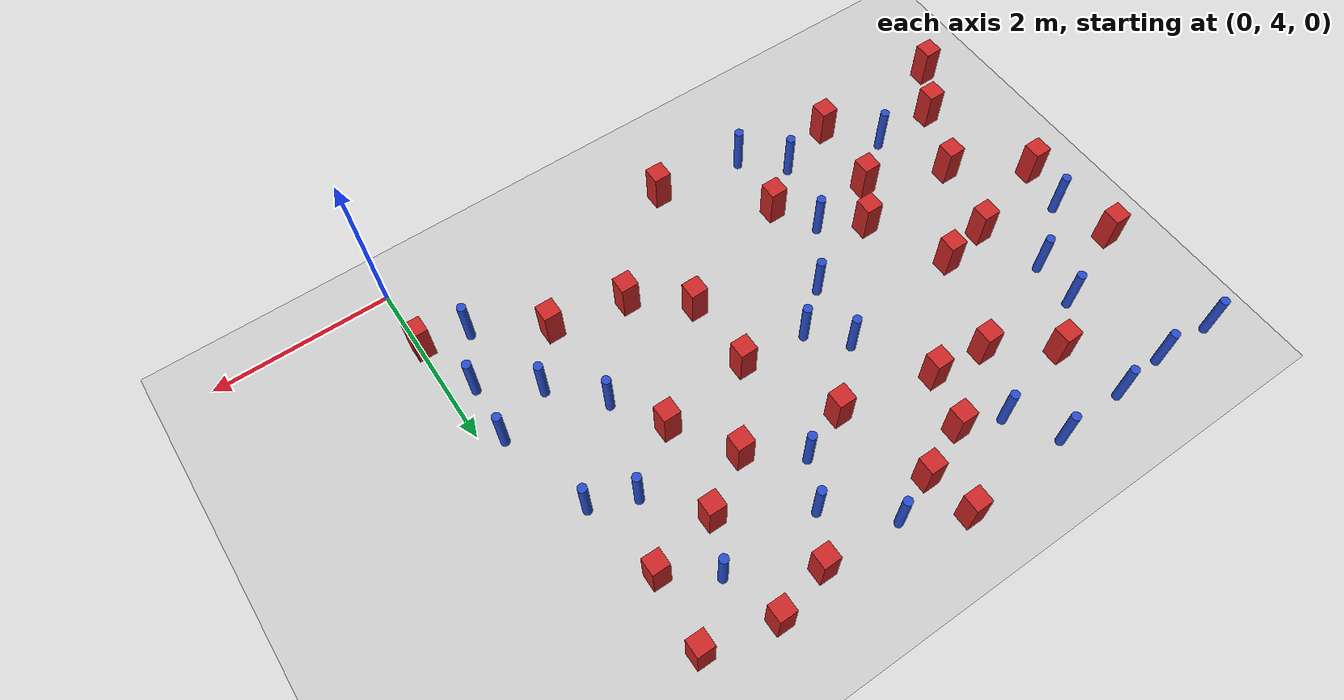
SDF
<sdf version="1.6">
 <world name="default">
  <model name="ground_plane">
   <static>1</static>
   <link name="link">
    <collision name="collision">
     <geometry><plane><normal>0 0 1</normal><size>100 100</size></plane></geometry>
     <surface><friction><ode><mu>100</mu><mu2>50</mu2></ode></friction></surface>
    </collision>
    <visual name="visual">
     <cast_shadows>0</cast_shadows>
     <geometry><plane><normal>0 0 1</normal><size>100 100</size></plane></geometry>
     <material>
      <ambient>1.0 1.0 1.0 1.0</ambient>
      <diffuse>0.8 0.8 0.8 1.0</diffuse>
      <specular>0.01 0.01 0.01 1.000000</specular>
     </material>
    </visual>
   </link>
  </model>
  <model name="square_post_obstacle0">
   <static>true</static>
   <pose>-3.53075418306 9.46736991092 1.91545236811e-07 -7.35059704564e-06 1.12565212e-07 2.39332434364e-05</pose>
   <link name="link">
    <pose>0 0 0.25 0 -0 0</pose>
    <inertial>
     <mass>100</mass>
     <inertia>
      <ixx>0.166667</ixx>
      <ixy>0</ixy>
      <ixz>0</ixz>
      <iyy>0.166667</iyy>
      <iyz>0</iyz>
      <izz>0.166667</izz>
     </inertia>
    </inertial>
    <collision name="collision"><geometry><box><size>.2 .2 .5</size></box></geometry></collision>
    <visual name="visual">
     <geometry><box><size>.2 .2 .5</size></box></geometry>
     <material>
      <script><name>Gazebo/Red</name><uri>file://media/materials/scripts/gazebo.material</uri></script>
     </material>
    </visual>
   </link>
  </model>
  <model name="square_post_obstacle1">
   <static>true</static>
   <pose>-5.25605438137 4.89700262529 1.91545236811e-07 -7.35059704564e-06 1.12565212e-07 2.39332434364e-05</pose>
   <link name="link">
    <pose>0 0 0.25 0 -0 0</pose>
    <inertial>
     <mass>100</mass>
     <inertia>
      <ixx>0.166667</ixx>
      <ixy>0</ixy>
      <ixz>0</ixz>
      <iyy>0.166667</iyy>
      <iyz>0</iyz>
      <izz>0.166667</izz>
     </inertia>
    </inertial>
    <collision name="collision"><geometry><box><size>.2 .2 .5</size></box></geometry></collision>
    <visual name="visual">
     <geometry><box><size>.2 .2 .5</size></box></geometry>
     <material>
      <script><name>Gazebo/Red</name><uri>file://media/materials/scripts/gazebo.material</uri></script>
     </material>
    </visual>
   </link>
  </model>
  <model name="pole_obstacle3">
   <static>true</static>
   <pose>-1.21258136794 8.60759333295 7.38925637345e-09 -8.47170692798e-08 1.24976764881e-08 -1.74513093027e-07</pose>
   <link name="link">
    <pose>0 0 0.3 0 -0 0</pose>
    <inertial>
     <mass>1</mass>
     <inertia><ixx>0.145833</ixx><ixy>0</ixy><ixz>0</ixz><iyy>0.145833</iyy><iyz>0</iyz><izz>0.125</izz></inertia>
    </inertial>
    <collision name="collision">
     <geometry><cylinder><radius>0.05</radius><length>.6</length></cylinder></geometry>
    </collision>
    <visual name="visual">
     <geometry><cylinder><radius>0.05</radius><length>.6</length></cylinder></geometry>
     <material>
      <script><name>Gazebo/Blue</name><uri>file://media/materials/scripts/gazebo.material</uri></script>
     </material>
    </visual>
   </link>
  </model>
  <model name="pole_obstacle5">
   <static>true</static>
   <pose>-0.992801236177 7.50081790914 7.38925637345e-09 -8.47170692799e-08 1.2497676509e-08 -1.74513093015e-07</pose>
   <link name="link">
    <pose>0 0 0.3 0 -0 0</pose>
    <inertial>
     <mass>1</mass>
     <inertia><ixx>0.145833</ixx><ixy>0</ixy><ixz>0</ixz><iyy>0.145833</iyy><iyz>0</iyz><izz>0.125</izz></inertia>
    </inertial>
    <collision name="collision">
     <geometry><cylinder><radius>0.05</radius><length>.6</length></cylinder></geometry>
    </collision>
    <visual name="visual">
     <geometry><cylinder><radius>0.05</radius><length>.6</length></cylinder></geometry>
     <material>
      <script><name>Gazebo/Blue</name><uri>file://media/materials/scripts/gazebo.material</uri></script>
     </material>
    </visual>
   </link>
  </model>
  <model name="square_post_obstacle17">
   <static>true</static>
   <pose>-6.07549606696 6.16473758936 1.91545236811e-07 -7.35059704564e-06 1.12565212e-07 2.39332434364e-05</pose>
   <link name="link">
    <pose>0 0 0.25 0 -0 0</pose>
    <inertial>
     <mass>100</mass>
     <inertia>
      <ixx>0.166667</ixx>
      <ixy>0</ixy>
      <ixz>0</ixz>
      <iyy>0.166667</iyy>
      <iyz>0</iyz>
      <izz>0.166667</izz>
     </inertia>
    </inertial>
    <collision name="collision"><geometry><box><size>.2 .2 .5</size></box></geometry></collision>
    <visual name="visual">
     <geometry><box><size>.2 .2 .5</size></box></geometry>
     <material>
      <script><name>Gazebo/Red</name><uri>file://media/materials/scripts/gazebo.material</uri></script>
     </material>
    </visual>
   </link>
  </model>
  <model name="pole_obstacle12">
   <static>true</static>
   <pose>-6.2879917336 9.29565912501 7.38925637345e-09 -8.471706928e-08 1.24976765081e-08 -1.74513093015e-07</pose>
   <link name="link">
    <pose>0 0 0.3 0 -0 0</pose>
    <inertial>
     <mass>1</mass>
     <inertia><ixx>0.145833</ixx><ixy>0</ixy><ixz>0</ixz><iyy>0.145833</iyy><iyz>0</iyz><izz>0.125</izz></inertia>
    </inertial>
    <collision name="collision">
     <geometry><cylinder><radius>0.05</radius><length>.6</length></cylinder></geometry>
    </collision>
    <visual name="visual">
     <geometry><cylinder><radius>0.05</radius><length>.6</length></cylinder></geometry>
     <material>
      <script><name>Gazebo/Blue</name><uri>file://media/materials/scripts/gazebo.material</uri></script>
     </material>
    </visual>
   </link>
  </model>
  <model name="square_post_obstacle21">
   <static>true</static>
   <pose>-1.63938460143 7.04076987907 1.91545236811e-07 -7.35059704564e-06 1.12565212e-07 2.39332434364e-05</pose>
   <link name="link">
    <pose>0 0 0.25 0 -0 0</pose>
    <inertial>
     <mass>100</mass>
     <inertia>
      <ixx>0.166667</ixx>
      <ixy>0</ixy>
      <ixz>0</ixz>
      <iyy>0.166667</iyy>
      <iyz>0</iyz>
      <izz>0.166667</izz>
     </inertia>
    </inertial>
    <collision name="collision"><geometry><box><size>.2 .2 .5</size></box></geometry></collision>
    <visual name="visual">
     <geometry><box><size>.2 .2 .5</size></box></geometry>
     <material>
      <script><name>Gazebo/Red</name><uri>file://media/materials/scripts/gazebo.material</uri></script>
     </material>
    </visual>
   </link>
  </model>
  <model name="square_post_obstacle27">
   <static>true</static>
   <pose>-2.65837674304 6.03648667103 1.91545236811e-07 -7.35059704564e-06 1.12565212e-07 2.39332434364e-05</pose>
   <link name="link">
    <pose>0 0 0.25 0 -0 0</pose>
    <inertial>
     <mass>100</mass>
     <inertia>
      <ixx>0.166667</ixx>
      <ixy>0</ixy>
      <ixz>0</ixz>
      <iyy>0.166667</iyy>
      <iyz>0</iyz>
      <izz>0.166667</izz>
     </inertia>
    </inertial>
    <collision name="collision"><geometry><box><size>.2 .2 .5</size></box></geometry></collision>
    <visual name="visual">
     <geometry><box><size>.2 .2 .5</size></box></geometry>
     <material>
      <script><name>Gazebo/Red</name><uri>file://media/materials/scripts/gazebo.material</uri></script>
     </material>
    </visual>
   </link>
  </model>
  <model name="pole_obstacle19">
   <static>true</static>
   <pose>-5.70585581298 5.40961783522 7.38925637345e-09 -8.47170692796e-08 1.24976764786e-08 -1.74513093032e-07</pose>
   <link name="link">
    <pose>0 0 0.3 0 -0 0</pose>
    <inertial>
     <mass>1</mass>
     <inertia><ixx>0.145833</ixx><ixy>0</ixy><ixz>0</ixz><iyy>0.145833</iyy><iyz>0</iyz><izz>0.125</izz></inertia>
    </inertial>
    <collision name="collision">
     <geometry><cylinder><radius>0.05</radius><length>.6</length></cylinder></geometry>
    </collision>
    <visual name="visual">
     <geometry><cylinder><radius>0.05</radius><length>.6</length></cylinder></geometry>
     <material>
      <script><name>Gazebo/Blue</name><uri>file://media/materials/scripts/gazebo.material</uri></script>
     </material>
    </visual>
   </link>
  </model>
  <model name="pole_obstacle20">
   <static>true</static>
   <pose>-6.00791759984 8.25506998777 7.38925637345e-09 -8.471706928e-08 1.24976765081e-08 -1.74513093015e-07</pose>
   <link name="link">
    <pose>0 0 0.3 0 -0 0</pose>
    <inertial>
     <mass>1</mass>
     <inertia><ixx>0.145833</ixx><ixy>0</ixy><ixz>0</ixz><iyy>0.145833</iyy><iyz>0</iyz><izz>0.125</izz></inertia>
    </inertial>
    <collision name="collision">
     <geometry><cylinder><radius>0.05</radius><length>.6</length></cylinder></geometry>
    </collision>
    <visual name="visual">
     <geometry><cylinder><radius>0.05</radius><length>.6</length></cylinder></geometry>
     <material>
      <script><name>Gazebo/Blue</name><uri>file://media/materials/scripts/gazebo.material</uri></script>
     </material>
    </visual>
   </link>
  </model>
  <model name="pole_obstacle22">
   <static>true</static>
   <pose>-6.05785779084 7.73855304056 7.38925637345e-09 -8.47170692796e-08 1.24976764786e-08 -1.74513093032e-07</pose>
   <link name="link">
    <pose>0 0 0.3 0 -0 0</pose>
    <inertial>
     <mass>1</mass>
     <inertia><ixx>0.145833</ixx><ixy>0</ixy><ixz>0</ixz><iyy>0.145833</iyy><iyz>0</iyz><izz>0.125</izz></inertia>
    </inertial>
    <collision name="collision">
     <geometry><cylinder><radius>0.05</radius><length>.6</length></cylinder></geometry>
    </collision>
    <visual name="visual">
     <geometry><cylinder><radius>0.05</radius><length>.6</length></cylinder></geometry>
     <material>
      <script><name>Gazebo/Blue</name><uri>file://media/materials/scripts/gazebo.material</uri></script>
     </material>
    </visual>
   </link>
  </model>
  <model name="pole_obstacle24">
   <static>true</static>
   <pose>-4.49941915525 8.88102658289 7.38925637345e-09 -8.471706928e-08 1.24976765081e-08 -1.74513093015e-07</pose>
   <link name="link">
    <pose>0 0 0.3 0 -0 0</pose>
    <inertial>
     <mass>1</mass>
     <inertia><ixx>0.145833</ixx><ixy>0</ixy><ixz>0</ixz><iyy>0.145833</iyy><iyz>0</iyz><izz>0.125</izz></inertia>
    </inertial>
    <collision name="collision">
     <geometry><cylinder><radius>0.05</radius><length>.6</length></cylinder></geometry>
    </collision>
    <visual name="visual">
     <geometry><cylinder><radius>0.05</radius><length>.6</length></cylinder></geometry>
     <material>
      <script><name>Gazebo/Blue</name><uri>file://media/materials/scripts/gazebo.material</uri></script>
     </material>
    </visual>
   </link>
  </model>
  <model name="pole_obstacle25">
   <static>true</static>
   <pose>-2.93350430251 9.1320307527 7.38925637345e-09 -8.47170692793e-08 1.24976764408e-08 -1.74513093041e-07</pose>
   <link name="link">
    <pose>0 0 0.3 0 -0 0</pose>
    <inertial>
     <mass>1</mass>
     <inertia><ixx>0.145833</ixx><ixy>0</ixy><ixz>0</ixz><iyy>0.145833</iyy><iyz>0</iyz><izz>0.125</izz></inertia>
    </inertial>
    <collision name="collision">
     <geometry><cylinder><radius>0.05</radius><length>.6</length></cylinder></geometry>
    </collision>
    <visual name="visual">
     <geometry><cylinder><radius>0.05</radius><length>.6</length></cylinder></geometry>
     <material>
      <script><name>Gazebo/Blue</name><uri>file://media/materials/scripts/gazebo.material</uri></script>
     </material>
    </visual>
   </link>
  </model>
  <model name="pole_obstacle27">
   <static>true</static>
   <pose>-0.524027592434 4.93453125982 7.38925637345e-09 -8.471706928e-08 1.24976765117e-08 -1.74513093013e-07</pose>
   <link name="link">
    <pose>0 0 0.3 0 -0 0</pose>
    <inertial>
     <mass>1</mass>
     <inertia><ixx>0.145833</ixx><ixy>0</ixy><ixz>0</ixz><iyy>0.145833</iyy><iyz>0</iyz><izz>0.125</izz></inertia>
    </inertial>
    <collision name="collision">
     <geometry><cylinder><radius>0.05</radius><length>.6</length></cylinder></geometry>
    </collision>
    <visual name="visual">
     <geometry><cylinder><radius>0.05</radius><length>.6</length></cylinder></geometry>
     <material>
      <script><name>Gazebo/Blue</name><uri>file://media/materials/scripts/gazebo.material</uri></script>
     </material>
    </visual>
   </link>
  </model>
  <model name="square_post_obstacle32">
   <static>true</static>
   <pose>-1.26162450526 5.40149464967 1.91545236811e-07 -7.35059704564e-06 1.12565212e-07 2.39332434364e-05</pose>
   <link name="link">
    <pose>0 0 0.25 0 -0 0</pose>
    <inertial>
     <mass>100</mass>
     <inertia>
      <ixx>0.166667</ixx>
      <ixy>0</ixy>
      <ixz>0</ixz>
      <iyy>0.166667</iyy>
      <iyz>0</iyz>
      <izz>0.166667</izz>
     </inertia>
    </inertial>
    <collision name="collision"><geometry><box><size>.2 .2 .5</size></box></geometry></collision>
    <visual name="visual">
     <geometry><box><size>.2 .2 .5</size></box></geometry>
     <material>
      <script><name>Gazebo/Red</name><uri>file://media/materials/scripts/gazebo.material</uri></script>
     </material>
    </visual>
   </link>
  </model>
  <model name="square_post_obstacle34">
   <static>true</static>
   <pose>-4.83403731483 6.23752323746 1.91545236811e-07 -7.35059704564e-06 1.12565212e-07 2.39332434364e-05</pose>
   <link name="link">
    <pose>0 0 0.25 0 -0 0</pose>
    <inertial>
     <mass>100</mass>
     <inertia>
      <ixx>0.166667</ixx>
      <ixy>0</ixy>
      <ixz>0</ixz>
      <iyy>0.166667</iyy>
      <iyz>0</iyz>
      <izz>0.166667</izz>
     </inertia>
    </inertial>
    <collision name="collision"><geometry><box><size>.2 .2 .5</size></box></geometry></collision>
    <visual name="visual">
     <geometry><box><size>.2 .2 .5</size></box></geometry>
     <material>
      <script><name>Gazebo/Red</name><uri>file://media/materials/scripts/gazebo.material</uri></script>
     </material>
    </visual>
   </link>
  </model>
  <model name="pole_obstacle36">
   <static>true</static>
   <pose>-3.8856009193 6.59154278633 7.38925637345e-09 -8.47170692798e-08 1.24976765033e-08 -1.74513093019e-07</pose>
   <link name="link">
    <pose>0 0 0.3 0 -0 0</pose>
    <inertial>
     <mass>1</mass>
     <inertia><ixx>0.145833</ixx><ixy>0</ixy><ixz>0</ixz><iyy>0.145833</iyy><iyz>0</iyz><izz>0.125</izz></inertia>
    </inertial>
    <collision name="collision">
     <geometry><cylinder><radius>0.05</radius><length>.6</length></cylinder></geometry>
    </collision>
    <visual name="visual">
     <geometry><cylinder><radius>0.05</radius><length>.6</length></cylinder></geometry>
     <material>
      <script><name>Gazebo/Blue</name><uri>file://media/materials/scripts/gazebo.material</uri></script>
     </material>
    </visual>
   </link>
  </model>
  <model name="pole_obstacle45">
   <static>true</static>
   <pose>-2.6048729082 8.10310193207 7.38925637345e-09 -8.47170692793e-08 1.24976764408e-08 -1.74513093041e-07</pose>
   <link name="link">
    <pose>0 0 0.3 0 -0 0</pose>
    <inertial>
     <mass>1</mass>
     <inertia><ixx>0.145833</ixx><ixy>0</ixy><ixz>0</ixz><iyy>0.145833</iyy><iyz>0</iyz><izz>0.125</izz></inertia>
    </inertial>
    <collision name="collision">
     <geometry><cylinder><radius>0.05</radius><length>.6</length></cylinder></geometry>
    </collision>
    <visual name="visual">
     <geometry><cylinder><radius>0.05</radius><length>.6</length></cylinder></geometry>
     <material>
      <script><name>Gazebo/Blue</name><uri>file://media/materials/scripts/gazebo.material</uri></script>
     </material>
    </visual>
   </link>
  </model>
  <model name="square_post_obstacle46">
   <static>true</static>
   <pose>-3.43145967635 8.93851247258 1.91545236811e-07 -7.35059704564e-06 1.12565212e-07 2.39332434364e-05</pose>
   <link name="link">
    <pose>0 0 0.25 0 -0 0</pose>
    <inertial>
     <mass>100</mass>
     <inertia>
      <ixx>0.166667</ixx>
      <ixy>0</ixy>
      <ixz>0</ixz>
      <iyy>0.166667</iyy>
      <iyz>0</iyz>
      <izz>0.166667</izz>
     </inertia>
    </inertial>
    <collision name="collision"><geometry><box><size>.2 .2 .5</size></box></geometry></collision>
    <visual name="visual">
     <geometry><box><size>.2 .2 .5</size></box></geometry>
     <material>
      <script><name>Gazebo/Red</name><uri>file://media/materials/scripts/gazebo.material</uri></script>
     </material>
    </visual>
   </link>
  </model>
  <model name="square_post_obstacle47">
   <static>true</static>
   <pose>-2.67235427778 6.89441027117 1.91545236811e-07 -7.35059704564e-06 1.12565212e-07 2.39332434364e-05</pose>
   <link name="link">
    <pose>0 0 0.25 0 -0 0</pose>
    <inertial>
     <mass>100</mass>
     <inertia>
      <ixx>0.166667</ixx>
      <ixy>0</ixy>
      <ixz>0</ixz>
      <iyy>0.166667</iyy>
      <iyz>0</iyz>
      <izz>0.166667</izz>
     </inertia>
    </inertial>
    <collision name="collision"><geometry><box><size>.2 .2 .5</size></box></geometry></collision>
    <visual name="visual">
     <geometry><box><size>.2 .2 .5</size></box></geometry>
     <material>
      <script><name>Gazebo/Red</name><uri>file://media/materials/scripts/gazebo.material</uri></script>
     </material>
    </visual>
   </link>
  </model>
  <model name="square_post_obstacle50">
   <static>true</static>
   <pose>-6.95456554702 7.86894618951 1.91545236811e-07 -7.35059704564e-06 1.12565212e-07 2.39332434364e-05</pose>
   <link name="link">
    <pose>0 0 0.25 0 -0 0</pose>
    <inertial>
     <mass>100</mass>
     <inertia>
      <ixx>0.166667</ixx>
      <ixy>0</ixy>
      <ixz>0</ixz>
      <iyy>0.166667</iyy>
      <iyz>0</iyz>
      <izz>0.166667</izz>
     </inertia>
    </inertial>
    <collision name="collision"><geometry><box><size>.2 .2 .5</size></box></geometry></collision>
    <visual name="visual">
     <geometry><box><size>.2 .2 .5</size></box></geometry>
     <material>
      <script><name>Gazebo/Red</name><uri>file://media/materials/scripts/gazebo.material</uri></script>
     </material>
    </visual>
   </link>
  </model>
  <model name="square_post_obstacle55">
   <static>true</static>
   <pose>-6.83424525823 4.87209295923 1.91545236811e-07 -7.35059704564e-06 1.12565212e-07 2.39332434364e-05</pose>
   <link name="link">
    <pose>0 0 0.25 0 -0 0</pose>
    <inertial>
     <mass>100</mass>
     <inertia>
      <ixx>0.166667</ixx>
      <ixy>0</ixy>
      <ixz>0</ixz>
      <iyy>0.166667</iyy>
      <iyz>0</iyz>
      <izz>0.166667</izz>
     </inertia>
    </inertial>
    <collision name="collision"><geometry><box><size>.2 .2 .5</size></box></geometry></collision>
    <visual name="visual">
     <geometry><box><size>.2 .2 .5</size></box></geometry>
     <material>
      <script><name>Gazebo/Red</name><uri>file://media/materials/scripts/gazebo.material</uri></script>
     </material>
    </visual>
   </link>
  </model>
  <model name="pole_obstacle54">
   <static>true</static>
   <pose>-3.76148415818 7.34241187653 7.38925637345e-09 -8.47170692798e-08 1.24976765033e-08 -1.74513093019e-07</pose>
   <link name="link">
    <pose>0 0 0.3 0 -0 0</pose>
    <inertial>
     <mass>1</mass>
     <inertia><ixx>0.145833</ixx><ixy>0</ixy><ixz>0</ixz><iyy>0.145833</iyy><iyz>0</iyz><izz>0.125</izz></inertia>
    </inertial>
    <collision name="collision">
     <geometry><cylinder><radius>0.05</radius><length>.6</length></cylinder></geometry>
    </collision>
    <visual name="visual">
     <geometry><cylinder><radius>0.05</radius><length>.6</length></cylinder></geometry>
     <material>
      <script><name>Gazebo/Blue</name><uri>file://media/materials/scripts/gazebo.material</uri></script>
     </material>
    </visual>
   </link>
  </model>
  <model name="square_post_obstacle60">
   <static>true</static>
   <pose>-0.627624410246 9.08419817057 1.91545236811e-07 -7.35059704564e-06 1.12565212e-07 2.39332434364e-05</pose>
   <link name="link">
    <pose>0 0 0.25 0 -0 0</pose>
    <inertial>
     <mass>100</mass>
     <inertia>
      <ixx>0.166667</ixx>
      <ixy>0</ixy>
      <ixz>0</ixz>
      <iyy>0.166667</iyy>
      <iyz>0</iyz>
      <izz>0.166667</izz>
     </inertia>
    </inertial>
    <collision name="collision"><geometry><box><size>.2 .2 .5</size></box></geometry></collision>
    <visual name="visual">
     <geometry><box><size>.2 .2 .5</size></box></geometry>
     <material>
      <script><name>Gazebo/Red</name><uri>file://media/materials/scripts/gazebo.material</uri></script>
     </material>
    </visual>
   </link>
  </model>
  <model name="square_post_obstacle67">
   <static>true</static>
   <pose>-3.1452518187 7.89795811853 1.91545236811e-07 -7.35059704564e-06 1.12565212e-07 2.39332434364e-05</pose>
   <link name="link">
    <pose>0 0 0.25 0 -0 0</pose>
    <inertial>
     <mass>100</mass>
     <inertia>
      <ixx>0.166667</ixx>
      <ixy>0</ixy>
      <ixz>0</ixz>
      <iyy>0.166667</iyy>
      <iyz>0</iyz>
      <izz>0.166667</izz>
     </inertia>
    </inertial>
    <collision name="collision"><geometry><box><size>.2 .2 .5</size></box></geometry></collision>
    <visual name="visual">
     <geometry><box><size>.2 .2 .5</size></box></geometry>
     <material>
      <script><name>Gazebo/Red</name><uri>file://media/materials/scripts/gazebo.material</uri></script>
     </material>
    </visual>
   </link>
  </model>
  <model name="square_post_obstacle73">
   <static>true</static>
   <pose>-2.05927878235 7.70345561787 1.91545236811e-07 -7.35059704564e-06 1.12565212e-07 2.39332434364e-05</pose>
   <link name="link">
    <pose>0 0 0.25 0 -0 0</pose>
    <inertial>
     <mass>100</mass>
     <inertia>
      <ixx>0.166667</ixx>
      <ixy>0</ixy>
      <ixz>0</ixz>
      <iyy>0.166667</iyy>
      <iyz>0</iyz>
      <izz>0.166667</izz>
     </inertia>
    </inertial>
    <collision name="collision"><geometry><box><size>.2 .2 .5</size></box></geometry></collision>
    <visual name="visual">
     <geometry><box><size>.2 .2 .5</size></box></geometry>
     <material>
      <script><name>Gazebo/Red</name><uri>file://media/materials/scripts/gazebo.material</uri></script>
     </material>
    </visual>
   </link>
  </model>
  <model name="square_post_obstacle78">
   <static>true</static>
   <pose>-6.86814173532 6.71573351335 1.91545236811e-07 -7.35059704564e-06 1.12565212e-07 2.39332434364e-05</pose>
   <link name="link">
    <pose>0 0 0.25 0 -0 0</pose>
    <inertial>
     <mass>100</mass>
     <inertia>
      <ixx>0.166667</ixx>
      <ixy>0</ixy>
      <ixz>0</ixz>
      <iyy>0.166667</iyy>
      <iyz>0</iyz>
      <izz>0.166667</izz>
     </inertia>
    </inertial>
    <collision name="collision"><geometry><box><size>.2 .2 .5</size></box></geometry></collision>
    <visual name="visual">
     <geometry><box><size>.2 .2 .5</size></box></geometry>
     <material>
      <script><name>Gazebo/Red</name><uri>file://media/materials/scripts/gazebo.material</uri></script>
     </material>
    </visual>
   </link>
  </model>
  <model name="pole_obstacle80">
   <static>true</static>
   <pose>-0.252718612623 5.54114068294 7.38925637345e-09 -8.47170692799e-08 1.24976765096e-08 -1.74513093014e-07</pose>
   <link name="link">
    <pose>0 0 0.3 0 -0 0</pose>
    <inertial>
     <mass>1</mass>
     <inertia><ixx>0.145833</ixx><ixy>0</ixy><ixz>0</ixz><iyy>0.145833</iyy><iyz>0</iyz><izz>0.125</izz></inertia>
    </inertial>
    <collision name="collision">
     <geometry><cylinder><radius>0.05</radius><length>.6</length></cylinder></geometry>
    </collision>
    <visual name="visual">
     <geometry><cylinder><radius>0.05</radius><length>.6</length></cylinder></geometry>
     <material>
      <script><name>Gazebo/Blue</name><uri>file://media/materials/scripts/gazebo.material</uri></script>
     </material>
    </visual>
   </link>
  </model>
  <model name="square_post_obstacle81">
   <static>true</static>
   <pose>-4.21942908309 8.11950886835 1.91545236811e-07 -7.35059704564e-06 1.12565212e-07 2.39332434364e-05</pose>
   <link name="link">
    <pose>0 0 0.25 0 -0 0</pose>
    <inertial>
     <mass>100</mass>
     <inertia>
      <ixx>0.166667</ixx>
      <ixy>0</ixy>
      <ixz>0</ixz>
      <iyy>0.166667</iyy>
      <iyz>0</iyz>
      <izz>0.166667</izz>
     </inertia>
    </inertial>
    <collision name="collision"><geometry><box><size>.2 .2 .5</size></box></geometry></collision>
    <visual name="visual">
     <geometry><box><size>.2 .2 .5</size></box></geometry>
     <material>
      <script><name>Gazebo/Red</name><uri>file://media/materials/scripts/gazebo.material</uri></script>
     </material>
    </visual>
   </link>
  </model>
  <model name="square_post_obstacle83">
   <static>true</static>
   <pose>-2.0983579521 5.56779890945 1.91545236811e-07 -7.35059704564e-06 1.12565212e-07 2.39332434364e-05</pose>
   <link name="link">
    <pose>0 0 0.25 0 -0 0</pose>
    <inertial>
     <mass>100</mass>
     <inertia>
      <ixx>0.166667</ixx>
      <ixy>0</ixy>
      <ixz>0</ixz>
      <iyy>0.166667</iyy>
      <iyz>0</iyz>
      <izz>0.166667</izz>
     </inertia>
    </inertial>
    <collision name="collision"><geometry><box><size>.2 .2 .5</size></box></geometry></collision>
    <visual name="visual">
     <geometry><box><size>.2 .2 .5</size></box></geometry>
     <material>
      <script><name>Gazebo/Red</name><uri>file://media/materials/scripts/gazebo.material</uri></script>
     </material>
    </visual>
   </link>
  </model>
  <model name="pole_obstacle96">
   <static>true</static>
   <pose>-0.216597036254 6.21128762167 7.38925637345e-09 -8.47170692799e-08 1.2497676507e-08 -1.74513093018e-07</pose>
   <link name="link">
    <pose>0 0 0.3 0 -0 0</pose>
    <inertial>
     <mass>1</mass>
     <inertia><ixx>0.145833</ixx><ixy>0</ixy><ixz>0</ixz><iyy>0.145833</iyy><iyz>0</iyz><izz>0.125</izz></inertia>
    </inertial>
    <collision name="collision">
     <geometry><cylinder><radius>0.05</radius><length>.6</length></cylinder></geometry>
    </collision>
    <visual name="visual">
     <geometry><cylinder><radius>0.05</radius><length>.6</length></cylinder></geometry>
     <material>
      <script><name>Gazebo/Blue</name><uri>file://media/materials/scripts/gazebo.material</uri></script>
     </material>
    </visual>
   </link>
  </model>
  <model name="square_post_obstacle88">
   <static>true</static>
   <pose>-4.02328042686 8.70792122796 1.91545236811e-07 -7.35059704564e-06 1.12565212e-07 2.39332434364e-05</pose>
   <link name="link">
    <pose>0 0 0.25 0 -0 0</pose>
    <inertial>
     <mass>100</mass>
     <inertia>
      <ixx>0.166667</ixx>
      <ixy>0</ixy>
      <ixz>0</ixz>
      <iyy>0.166667</iyy>
      <iyz>0</iyz>
      <izz>0.166667</izz>
     </inertia>
    </inertial>
    <collision name="collision"><geometry><box><size>.2 .2 .5</size></box></geometry></collision>
    <visual name="visual">
     <geometry><box><size>.2 .2 .5</size></box></geometry>
     <material>
      <script><name>Gazebo/Red</name><uri>file://media/materials/scripts/gazebo.material</uri></script>
     </material>
    </visual>
   </link>
  </model>
  <model name="square_post_obstacle102">
   <static>true</static>
   <pose>-4.10437983633 5.47731671219 1.91545236811e-07 -7.35059704564e-06 1.12565212e-07 2.39332434364e-05</pose>
   <link name="link">
    <pose>0 0 0.25 0 -0 0</pose>
    <inertial>
     <mass>100</mass>
     <inertia>
      <ixx>0.166667</ixx>
      <ixy>0</ixy>
      <ixz>0</ixz>
      <iyy>0.166667</iyy>
      <iyz>0</iyz>
      <izz>0.166667</izz>
     </inertia>
    </inertial>
    <collision name="collision"><geometry><box><size>.2 .2 .5</size></box></geometry></collision>
    <visual name="visual">
     <geometry><box><size>.2 .2 .5</size></box></geometry>
     <material>
      <script><name>Gazebo/Red</name><uri>file://media/materials/scripts/gazebo.material</uri></script>
     </material>
    </visual>
   </link>
  </model>
  <model name="square_post_obstacle105">
   <static>true</static>
   <pose>-4.83709713128 8.17951320447 1.91545236811e-07 -7.35059704564e-06 1.12565212e-07 2.39332434364e-05</pose>
   <link name="link">
    <pose>0 0 0.25 0 -0 0</pose>
    <inertial>
     <mass>100</mass>
     <inertia>
      <ixx>0.166667</ixx>
      <ixy>0</ixy>
      <ixz>0</ixz>
      <iyy>0.166667</iyy>
      <iyz>0</iyz>
      <izz>0.166667</izz>
     </inertia>
    </inertial>
    <collision name="collision"><geometry><box><size>.2 .2 .5</size></box></geometry></collision>
    <visual name="visual">
     <geometry><box><size>.2 .2 .5</size></box></geometry>
     <material>
      <script><name>Gazebo/Red</name><uri>file://media/materials/scripts/gazebo.material</uri></script>
     </material>
    </visual>
   </link>
  </model>
  <model name="square_post_obstacle106">
   <static>true</static>
   <pose>-0.0300472141594 4.81381780339 1.91545236811e-07 -7.35059704564e-06 1.12565212e-07 2.39332434364e-05</pose>
   <link name="link">
    <pose>0 0 0.25 0 -0 0</pose>
    <inertial>
     <mass>100</mass>
     <inertia>
      <ixx>0.166667</ixx>
      <ixy>0</ixy>
      <ixz>0</ixz>
      <iyy>0.166667</iyy>
      <iyz>0</iyz>
      <izz>0.166667</izz>
     </inertia>
    </inertial>
    <collision name="collision"><geometry><box><size>.2 .2 .5</size></box></geometry></collision>
    <visual name="visual">
     <geometry><box><size>.2 .2 .5</size></box></geometry>
     <material>
      <script><name>Gazebo/Red</name><uri>file://media/materials/scripts/gazebo.material</uri></script>
     </material>
    </visual>
   </link>
  </model>
  <model name="square_post_obstacle110">
   <static>true</static>
   <pose>-1.4590087241 8.07779856408 1.91545236811e-07 -7.35059704564e-06 1.12565212e-07 2.39332434364e-05</pose>
   <link name="link">
    <pose>0 0 0.25 0 -0 0</pose>
    <inertial>
     <mass>100</mass>
     <inertia>
      <ixx>0.166667</ixx>
      <ixy>0</ixy>
      <ixz>0</ixz>
      <iyy>0.166667</iyy>
      <iyz>0</iyz>
      <izz>0.166667</izz>
     </inertia>
    </inertial>
    <collision name="collision"><geometry><box><size>.2 .2 .5</size></box></geometry></collision>
    <visual name="visual">
     <geometry><box><size>.2 .2 .5</size></box></geometry>
     <material>
      <script><name>Gazebo/Red</name><uri>file://media/materials/scripts/gazebo.material</uri></script>
     </material>
    </visual>
   </link>
  </model>
  <model name="pole_obstacle123">
   <static>true</static>
   <pose>-4.37684147715 5.95188595505 7.38925637345e-09 -8.47170692796e-08 1.24976764786e-08 -1.74513093032e-07</pose>
   <link name="link">
    <pose>0 0 0.3 0 -0 0</pose>
    <inertial>
     <mass>1</mass>
     <inertia><ixx>0.145833</ixx><ixy>0</ixy><ixz>0</ixz><iyy>0.145833</iyy><iyz>0</iyz><izz>0.125</izz></inertia>
    </inertial>
    <collision name="collision">
     <geometry><cylinder><radius>0.05</radius><length>.6</length></cylinder></geometry>
    </collision>
    <visual name="visual">
     <geometry><cylinder><radius>0.05</radius><length>.6</length></cylinder></geometry>
     <material>
      <script><name>Gazebo/Blue</name><uri>file://media/materials/scripts/gazebo.material</uri></script>
     </material>
    </visual>
   </link>
  </model>
  <model name="pole_obstacle142">
   <static>true</static>
   <pose>-4.82415898738 9.39087100952 7.38925637345e-09 -8.471706928e-08 1.24976765081e-08 -1.74513093015e-07</pose>
   <link name="link">
    <pose>0 0 0.3 0 -0 0</pose>
    <inertial>
     <mass>1</mass>
     <inertia><ixx>0.145833</ixx><ixy>0</ixy><ixz>0</ixz><iyy>0.145833</iyy><iyz>0</iyz><izz>0.125</izz></inertia>
    </inertial>
    <collision name="collision">
     <geometry><cylinder><radius>0.05</radius><length>.6</length></cylinder></geometry>
    </collision>
    <visual name="visual">
     <geometry><cylinder><radius>0.05</radius><length>.6</length></cylinder></geometry>
     <material>
      <script><name>Gazebo/Blue</name><uri>file://media/materials/scripts/gazebo.material</uri></script>
     </material>
    </visual>
   </link>
  </model>
  <model name="pole_obstacle147">
   <static>true</static>
   <pose>-2.33967183373 8.59403026228 7.38925637345e-09 -8.47170692793e-08 1.24976764408e-08 -1.74513093041e-07</pose>
   <link name="link">
    <pose>0 0 0.3 0 -0 0</pose>
    <inertial>
     <mass>1</mass>
     <inertia><ixx>0.145833</ixx><ixy>0</ixy><ixz>0</ixz><iyy>0.145833</iyy><iyz>0</iyz><izz>0.125</izz></inertia>
    </inertial>
    <collision name="collision">
     <geometry><cylinder><radius>0.05</radius><length>.6</length></cylinder></geometry>
    </collision>
    <visual name="visual">
     <geometry><cylinder><radius>0.05</radius><length>.6</length></cylinder></geometry>
     <material>
      <script><name>Gazebo/Blue</name><uri>file://media/materials/scripts/gazebo.material</uri></script>
     </material>
    </visual>
   </link>
  </model>
  <model name="square_post_obstacle140">
   <static>true</static>
   <pose>-5.49494677539 8.6353770362 1.91545236811e-07 -7.35059704564e-06 1.12565212e-07 2.39332434364e-05</pose>
   <link name="link">
    <pose>0 0 0.25 0 -0 0</pose>
    <inertial>
     <mass>100</mass>
     <inertia>
      <ixx>0.166667</ixx>
      <ixy>0</ixy>
      <ixz>0</ixz>
      <iyy>0.166667</iyy>
      <iyz>0</iyz>
      <izz>0.166667</izz>
     </inertia>
    </inertial>
    <collision name="collision"><geometry><box><size>.2 .2 .5</size></box></geometry></collision>
    <visual name="visual">
     <geometry><box><size>.2 .2 .5</size></box></geometry>
     <material>
      <script><name>Gazebo/Red</name><uri>file://media/materials/scripts/gazebo.material</uri></script>
     </material>
    </visual>
   </link>
  </model>
  <model name="pole_obstacle149">
   <static>true</static>
   <pose>-4.60333879231 5.10208810926 7.38925637345e-09 -8.47170692796e-08 1.24976764786e-08 -1.74513093032e-07</pose>
   <link name="link">
    <pose>0 0 0.3 0 -0 0</pose>
    <inertial>
     <mass>1</mass>
     <inertia><ixx>0.145833</ixx><ixy>0</ixy><ixz>0</ixz><iyy>0.145833</iyy><iyz>0</iyz><izz>0.125</izz></inertia>
    </inertial>
    <collision name="collision">
     <geometry><cylinder><radius>0.05</radius><length>.6</length></cylinder></geometry>
    </collision>
    <visual name="visual">
     <geometry><cylinder><radius>0.05</radius><length>.6</length></cylinder></geometry>
     <material>
      <script><name>Gazebo/Blue</name><uri>file://media/materials/scripts/gazebo.material</uri></script>
     </material>
    </visual>
   </link>
  </model>
  <model name="pole_obstacle151">
   <static>true</static>
   <pose>-0.827024221361 5.96190484275 7.38925637345e-09 -8.471706928e-08 1.24976765086e-08 -1.74513093015e-07</pose>
   <link name="link">
    <pose>0 0 0.3 0 -0 0</pose>
    <inertial>
     <mass>1</mass>
     <inertia><ixx>0.145833</ixx><ixy>0</ixy><ixz>0</ixz><iyy>0.145833</iyy><iyz>0</iyz><izz>0.125</izz></inertia>
    </inertial>
    <collision name="collision">
     <geometry><cylinder><radius>0.05</radius><length>.6</length></cylinder></geometry>
    </collision>
    <visual name="visual">
     <geometry><cylinder><radius>0.05</radius><length>.6</length></cylinder></geometry>
     <material>
      <script><name>Gazebo/Blue</name><uri>file://media/materials/scripts/gazebo.material</uri></script>
     </material>
    </visual>
   </link>
  </model>
  <model name="pole_obstacle154">
   <static>true</static>
   <pose>-1.29998639769 6.4776705108 7.38925637345e-09 -8.47170692799e-08 1.24976765033e-08 -1.74513093018e-07</pose>
   <link name="link">
    <pose>0 0 0.3 0 -0 0</pose>
    <inertial>
     <mass>1</mass>
     <inertia><ixx>0.145833</ixx><ixy>0</ixy><ixz>0</ixz><iyy>0.145833</iyy><iyz>0</iyz><izz>0.125</izz></inertia>
    </inertial>
    <collision name="collision">
     <geometry><cylinder><radius>0.05</radius><length>.6</length></cylinder></geometry>
    </collision>
    <visual name="visual">
     <geometry><cylinder><radius>0.05</radius><length>.6</length></cylinder></geometry>
     <material>
      <script><name>Gazebo/Blue</name><uri>file://media/materials/scripts/gazebo.material</uri></script>
     </material>
    </visual>
   </link>
  </model>
  <model name="square_post_obstacle149">
   <static>true</static>
   <pose>-1.40457563673 9.24813137043 1.91545236811e-07 -7.35059704564e-06 1.12565212e-07 2.39332434364e-05</pose>
   <link name="link">
    <pose>0 0 0.25 0 -0 0</pose>
    <inertial>
     <mass>100</mass>
     <inertia>
      <ixx>0.166667</ixx>
      <ixy>0</ixy>
      <ixz>0</ixz>
      <iyy>0.166667</iyy>
      <iyz>0</iyz>
      <izz>0.166667</izz>
     </inertia>
    </inertial>
    <collision name="collision"><geometry><box><size>.2 .2 .5</size></box></geometry></collision>
    <visual name="visual">
     <geometry><box><size>.2 .2 .5</size></box></geometry>
     <material>
      <script><name>Gazebo/Red</name><uri>file://media/materials/scripts/gazebo.material</uri></script>
     </material>
    </visual>
   </link>
  </model>
  <model name="square_post_obstacle155">
   <static>true</static>
   <pose>-5.26507715121 7.1284243124 1.91545236811e-07 -7.35059704564e-06 1.12565212e-07 2.39332434364e-05</pose>
   <link name="link">
    <pose>0 0 0.25 0 -0 0</pose>
    <inertial>
     <mass>100</mass>
     <inertia>
      <ixx>0.166667</ixx>
      <ixy>0</ixy>
      <ixz>0</ixz>
      <iyy>0.166667</iyy>
      <iyz>0</iyz>
      <izz>0.166667</izz>
     </inertia>
    </inertial>
    <collision name="collision"><geometry><box><size>.2 .2 .5</size></box></geometry></collision>
    <visual name="visual">
     <geometry><box><size>.2 .2 .5</size></box></geometry>
     <material>
      <script><name>Gazebo/Red</name><uri>file://media/materials/scripts/gazebo.material</uri></script>
     </material>
    </visual>
   </link>
  </model>
  <model name="square_post_obstacle162">
   <static>true</static>
   <pose>-6.43659816519 5.40356851328 1.91545236811e-07 -7.35059704564e-06 1.12565212e-07 2.39332434364e-05</pose>
   <link name="link">
    <pose>0 0 0.25 0 -0 0</pose>
    <inertial>
     <mass>100</mass>
     <inertia>
      <ixx>0.166667</ixx>
      <ixy>0</ixy>
      <ixz>0</ixz>
      <iyy>0.166667</iyy>
      <iyz>0</iyz>
      <izz>0.166667</izz>
     </inertia>
    </inertial>
    <collision name="collision"><geometry><box><size>.2 .2 .5</size></box></geometry></collision>
    <visual name="visual">
     <geometry><box><size>.2 .2 .5</size></box></geometry>
     <material>
      <script><name>Gazebo/Red</name><uri>file://media/materials/scripts/gazebo.material</uri></script>
     </material>
    </visual>
   </link>
  </model>
  <model name="pole_obstacle173">
   <static>true</static>
   <pose>-6.75967028787 7.24800256346 7.38925637345e-09 -8.47170692796e-08 1.24976764786e-08 -1.74513093032e-07</pose>
   <link name="link">
    <pose>0 0 0.3 0 -0 0</pose>
    <inertial>
     <mass>1</mass>
     <inertia><ixx>0.145833</ixx><ixy>0</ixy><ixz>0</ixz><iyy>0.145833</iyy><iyz>0</iyz><izz>0.125</izz></inertia>
    </inertial>
    <collision name="collision">
     <geometry><cylinder><radius>0.05</radius><length>.6</length></cylinder></geometry>
    </collision>
    <visual name="visual">
     <geometry><cylinder><radius>0.05</radius><length>.6</length></cylinder></geometry>
     <material>
      <script><name>Gazebo/Blue</name><uri>file://media/materials/scripts/gazebo.material</uri></script>
     </material>
    </visual>
   </link>
  </model>
  <model name="pole_obstacle175">
   <static>true</static>
   <pose>-0.515368377513 7.30379927681 7.38925637345e-09 -8.471706928e-08 1.24976765117e-08 -1.74513093013e-07</pose>
   <link name="link">
    <pose>0 0 0.3 0 -0 0</pose>
    <inertial>
     <mass>1</mass>
     <inertia><ixx>0.145833</ixx><ixy>0</ixy><ixz>0</ixz><iyy>0.145833</iyy><iyz>0</iyz><izz>0.125</izz></inertia>
    </inertial>
    <collision name="collision">
     <geometry><cylinder><radius>0.05</radius><length>.6</length></cylinder></geometry>
    </collision>
    <visual name="visual">
     <geometry><cylinder><radius>0.05</radius><length>.6</length></cylinder></geometry>
     <material>
      <script><name>Gazebo/Blue</name><uri>file://media/materials/scripts/gazebo.material</uri></script>
     </material>
    </visual>
   </link>
  </model>
  <model name="pole_obstacle181">
   <static>true</static>
   <pose>-6.99297341876 9.31523300738 7.38925637345e-09 -8.471706928e-08 1.24976765081e-08 -1.74513093015e-07</pose>
   <link name="link">
    <pose>0 0 0.3 0 -0 0</pose>
    <inertial>
     <mass>1</mass>
     <inertia><ixx>0.145833</ixx><ixy>0</ixy><ixz>0</ixz><iyy>0.145833</iyy><iyz>0</iyz><izz>0.125</izz></inertia>
    </inertial>
    <collision name="collision">
     <geometry><cylinder><radius>0.05</radius><length>.6</length></cylinder></geometry>
    </collision>
    <visual name="visual">
     <geometry><cylinder><radius>0.05</radius><length>.6</length></cylinder></geometry>
     <material>
      <script><name>Gazebo/Blue</name><uri>file://media/materials/scripts/gazebo.material</uri></script>
     </material>
    </visual>
   </link>
  </model>
  <model name="square_post_obstacle172">
   <static>true</static>
   <pose>-5.8197700366 7.0308227552 1.91545236811e-07 -7.35059704564e-06 1.12565212e-07 2.39332434364e-05</pose>
   <link name="link">
    <pose>0 0 0.25 0 -0 0</pose>
    <inertial>
     <mass>100</mass>
     <inertia>
      <ixx>0.166667</ixx>
      <ixy>0</ixy>
      <ixz>0</ixz>
      <iyy>0.166667</iyy>
      <iyz>0</iyz>
      <izz>0.166667</izz>
     </inertia>
    </inertial>
    <collision name="collision"><geometry><box><size>.2 .2 .5</size></box></geometry></collision>
    <visual name="visual">
     <geometry><box><size>.2 .2 .5</size></box></geometry>
     <material>
      <script><name>Gazebo/Red</name><uri>file://media/materials/scripts/gazebo.material</uri></script>
     </material>
    </visual>
   </link>
  </model>
  <model name="pole_obstacle186">
   <static>true</static>
   <pose>-3.4237919871 6.95746462556 7.38925637345e-09 -8.47170692794e-08 1.24976764468e-08 -1.7451309304e-07</pose>
   <link name="link">
    <pose>0 0 0.3 0 -0 0</pose>
    <inertial>
     <mass>1</mass>
     <inertia><ixx>0.145833</ixx><ixy>0</ixy><ixz>0</ixz><iyy>0.145833</iyy><iyz>0</iyz><izz>0.125</izz></inertia>
    </inertial>
    <collision name="collision">
     <geometry><cylinder><radius>0.05</radius><length>.6</length></cylinder></geometry>
    </collision>
    <visual name="visual">
     <geometry><cylinder><radius>0.05</radius><length>.6</length></cylinder></geometry>
     <material>
      <script><name>Gazebo/Blue</name><uri>file://media/materials/scripts/gazebo.material</uri></script>
     </material>
    </visual>
   </link>
  </model>
  <model name="pole_obstacle195">
   <static>true</static>
   <pose>-5.66020054847 9.35458543622 7.38925637345e-09 -8.471706928e-08 1.24976765081e-08 -1.74513093015e-07</pose>
   <link name="link">
    <pose>0 0 0.3 0 -0 0</pose>
    <inertial>
     <mass>1</mass>
     <inertia><ixx>0.145833</ixx><ixy>0</ixy><ixz>0</ixz><iyy>0.145833</iyy><iyz>0</iyz><izz>0.125</izz></inertia>
    </inertial>
    <collision name="collision">
     <geometry><cylinder><radius>0.05</radius><length>.6</length></cylinder></geometry>
    </collision>
    <visual name="visual">
     <geometry><cylinder><radius>0.05</radius><length>.6</length></cylinder></geometry>
     <material>
      <script><name>Gazebo/Blue</name><uri>file://media/materials/scripts/gazebo.material</uri></script>
     </material>
    </visual>
   </link>
  </model>
  <model name="pole_obstacle215">
   <static>true</static>
   <pose>-4.17963298534 4.6995587229 7.38925637345e-09 -8.47170692796e-08 1.24976764786e-08 -1.74513093032e-07</pose>
   <link name="link">
    <pose>0 0 0.3 0 -0 0</pose>
    <inertial>
     <mass>1</mass>
     <inertia><ixx>0.145833</ixx><ixy>0</ixy><ixz>0</ixz><iyy>0.145833</iyy><iyz>0</iyz><izz>0.125</izz></inertia>
    </inertial>
    <collision name="collision">
     <geometry><cylinder><radius>0.05</radius><length>.6</length></cylinder></geometry>
    </collision>
    <visual name="visual">
     <geometry><cylinder><radius>0.05</radius><length>.6</length></cylinder></geometry>
     <material>
      <script><name>Gazebo/Blue</name><uri>file://media/materials/scripts/gazebo.material</uri></script>
     </material>
    </visual>
   </link>
  </model>
  <model name="square_post_obstacle206">
   <static>true</static>
   <pose>-3.16620875451 4.57641093561 1.91545236811e-07 -7.35059704564e-06 1.12565212e-07 2.39332434364e-05</pose>
   <link name="link">
    <pose>0 0 0.25 0 -0 0</pose>
    <inertial>
     <mass>100</mass>
     <inertia>
      <ixx>0.166667</ixx>
      <ixy>0</ixy>
      <ixz>0</ixz>
      <iyy>0.166667</iyy>
      <iyz>0</iyz>
      <izz>0.166667</izz>
     </inertia>
    </inertial>
    <collision name="collision"><geometry><box><size>.2 .2 .5</size></box></geometry></collision>
    <visual name="visual">
     <geometry><box><size>.2 .2 .5</size></box></geometry>
     <material>
      <script><name>Gazebo/Red</name><uri>file://media/materials/scripts/gazebo.material</uri></script>
     </material>
    </visual>
   </link>
  </model>
  <model name="square_post_obstacle207">
   <static>true</static>
   <pose>-5.15981821562 5.79276154904 1.91545236811e-07 -7.35059704564e-06 1.12565212e-07 2.39332434364e-05</pose>
   <link name="link">
    <pose>0 0 0.25 0 -0 0</pose>
    <inertial>
     <mass>100</mass>
     <inertia>
      <ixx>0.166667</ixx>
      <ixy>0</ixy>
      <ixz>0</ixz>
      <iyy>0.166667</iyy>
      <iyz>0</iyz>
      <izz>0.166667</izz>
     </inertia>
    </inertial>
    <collision name="collision"><geometry><box><size>.2 .2 .5</size></box></geometry></collision>
    <visual name="visual">
     <geometry><box><size>.2 .2 .5</size></box></geometry>
     <material>
      <script><name>Gazebo/Red</name><uri>file://media/materials/scripts/gazebo.material</uri></script>
     </material>
    </visual>
   </link>
  </model>
  <model name="square_post_obstacle217">
   <static>true</static>
   <pose>-0.707264035195 8.25032998808 1.91545236811e-07 -7.35059704564e-06 1.12565212e-07 2.39332434364e-05</pose>
   <link name="link">
    <pose>0 0 0.25 0 -0 0</pose>
    <inertial>
     <mass>100</mass>
     <inertia>
      <ixx>0.166667</ixx>
      <ixy>0</ixy>
      <ixz>0</ixz>
      <iyy>0.166667</iyy>
      <iyz>0</iyz>
      <izz>0.166667</izz>
     </inertia>
    </inertial>
    <collision name="collision"><geometry><box><size>.2 .2 .5</size></box></geometry></collision>
    <visual name="visual">
     <geometry><box><size>.2 .2 .5</size></box></geometry>
     <material>
      <script><name>Gazebo/Red</name><uri>file://media/materials/scripts/gazebo.material</uri></script>
     </material>
    </visual>
   </link>
  </model>
  <model name="square_post_obstacle222">
   <static>true</static>
   <pose>-2.0270200352 9.08828998808 1.91545236811e-07 -7.35059704564e-06 1.12565212e-07 2.39332434364e-05</pose>
   <link name="link">
    <pose>0 0 0.25 0 -0 0</pose>
    <inertial>
     <mass>100</mass>
     <inertia>
      <ixx>0.166667</ixx>
      <ixy>0</ixy>
      <ixz>0</ixz>
      <iyy>0.166667</iyy>
      <iyz>0</iyz>
      <izz>0.166667</izz>
     </inertia>
    </inertial>
    <collision name="collision"><geometry><box><size>.2 .2 .5</size></box></geometry></collision>
    <visual name="visual">
     <geometry><box><size>.2 .2 .5</size></box></geometry>
     <material>
      <script><name>Gazebo/Red</name><uri>file://media/materials/scripts/gazebo.material</uri></script>
     </material>
    </visual>
   </link>
  </model>
 </world>
</sdf>
